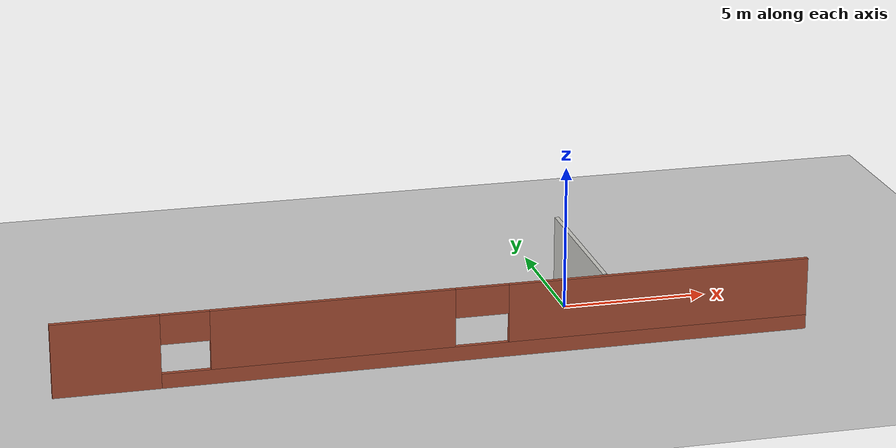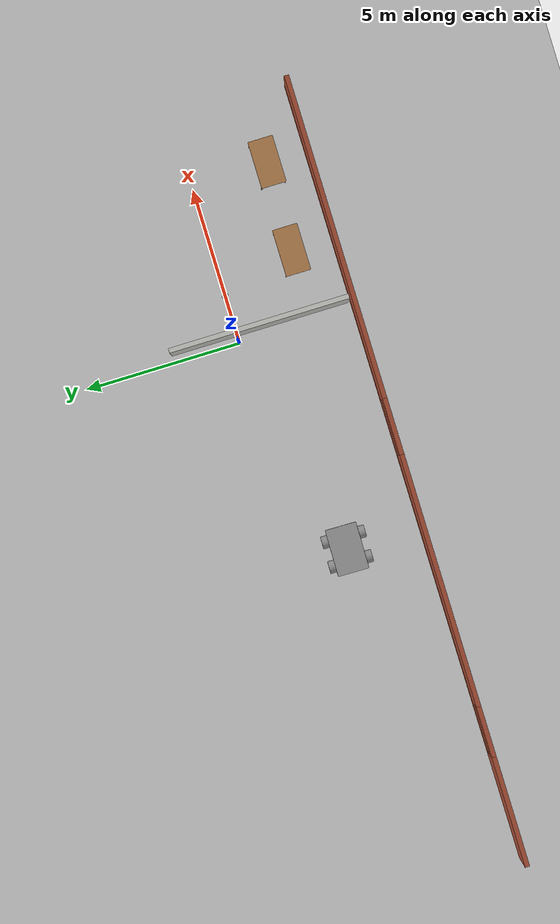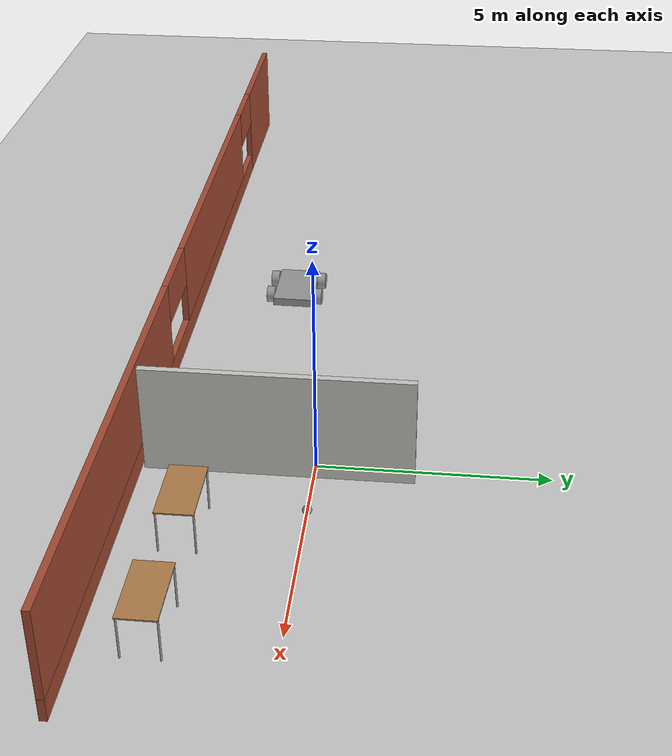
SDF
<sdf version="1.6">
 <world name="default">
  <model name="ground_plane">
   <static>1</static>
   <link name="link">
    <collision name="collision">
     <geometry><plane><normal>0 0 1</normal><size>100 100</size></plane></geometry>
     <surface><friction><ode><mu>100</mu><mu2>50</mu2></ode></friction></surface>
    </collision>
    <visual name="visual">
     <cast_shadows>0</cast_shadows>
     <geometry><plane><normal>0 0 1</normal><size>100 100</size></plane></geometry>
     <material>
      <script><uri>file://media/materials/scripts/gazebo.material</uri><name>Gazebo/Grey</name></script>
     </material>
    </visual>
   </link>
  </model>
  <model name="robot4wheels">
   <link name="link_0">
    <pose>0 0 -0.016 0 -0 0</pose>
    <inertial>
     <mass>1</mass>
     <inertia>
      <ixx>0.166667</ixx>
      <ixy>0</ixy>
      <ixz>0</ixz>
      <iyy>0.166667</iyy>
      <iyz>0</iyz>
      <izz>0.166667</izz>
     </inertia>
    </inertial>
    <visual name="visual">
     <geometry><box><size>1.5 1 0.2</size></box></geometry>
     <material>
      <lighting>1</lighting>
      <script><uri>file://media/materials/scripts/gazebo.material</uri><name>Gazebo/Grey</name></script>
      <shader type="pixel"><normal_map>__default__</normal_map></shader>
      <ambient>0.3 0.3 0.3 1</ambient>
      <diffuse>0.7 0.7 0.7 1</diffuse>
      <specular>0.01 0.01 0.01 1</specular>
      <emissive>0 0 0 1</emissive>
     </material>
    </visual>
    <collision name="collision">
     <geometry><box><size>1.5 1 0.2</size></box></geometry>
     <surface>
      <friction>
       <ode><mu>1</mu><mu2>1</mu2><fdir1>0 0 0</fdir1><slip1>0</slip1><slip2>0</slip2></ode>
       <torsional>
        <coefficient>1</coefficient>
        <patch_radius>0</patch_radius>
        <surface_radius>0</surface_radius>
        <use_patch_radius>1</use_patch_radius>
        <ode><slip>0</slip></ode>
       </torsional>
      </friction>
      <bounce><restitution_coefficient>0</restitution_coefficient><threshold>1e+06</threshold></bounce>
      <contact>
       <collide_without_contact>0</collide_without_contact>
       <collide_without_contact_bitmask>1</collide_without_contact_bitmask>
       <collide_bitmask>1</collide_bitmask>
       <ode>
        <soft_cfm>0</soft_cfm>
        <soft_erp>0.2</soft_erp>
        <kp>1e+13</kp>
        <kd>1</kd>
        <max_vel>0.01</max_vel>
        <min_depth>0</min_depth>
       </ode>
       <bullet>
        <split_impulse>1</split_impulse>
        <split_impulse_penetration_threshold>-0.01</split_impulse_penetration_threshold>
        <soft_cfm>0</soft_cfm>
        <soft_erp>0.2</soft_erp>
        <kp>1e+13</kp>
        <kd>1</kd>
       </bullet>
      </contact>
     </surface>
    </collision>
   </link>
   <link name="link_1">
    <pose>-0.4 -0.600001 0.004 1.5708 -0 0</pose>
    <inertial>
     <mass>1</mass>
     <inertia><ixx>0.145833</ixx><ixy>0</ixy><ixz>0</ixz><iyy>0.145833</iyy><iyz>0</iyz><izz>0.125</izz></inertia>
    </inertial>
    <visual name="visual">
     <geometry><cylinder><radius>0.2</radius><length>0.2</length></cylinder></geometry>
     <material>
      <lighting>1</lighting>
      <script><uri>file://media/materials/scripts/gazebo.material</uri><name>Gazebo/Grey</name></script>
      <shader type="pixel"><normal_map>__default__</normal_map></shader>
      <ambient>0.3 0.3 0.3 1</ambient>
      <diffuse>0.7 0.7 0.7 1</diffuse>
      <specular>0.01 0.01 0.01 1</specular>
      <emissive>0 0 0 1</emissive>
     </material>
    </visual>
    <collision name="collision">
     <geometry><cylinder><radius>0.2</radius><length>0.2</length></cylinder></geometry>
     <surface>
      <friction>
       <ode><mu>1</mu><mu2>1</mu2><fdir1>0 0 0</fdir1><slip1>0</slip1><slip2>0</slip2></ode>
       <torsional>
        <coefficient>1</coefficient>
        <patch_radius>0</patch_radius>
        <surface_radius>0</surface_radius>
        <use_patch_radius>1</use_patch_radius>
        <ode><slip>0</slip></ode>
       </torsional>
      </friction>
      <bounce><restitution_coefficient>0</restitution_coefficient><threshold>1e+06</threshold></bounce>
      <contact>
       <collide_without_contact>0</collide_without_contact>
       <collide_without_contact_bitmask>1</collide_without_contact_bitmask>
       <collide_bitmask>1</collide_bitmask>
       <ode>
        <soft_cfm>0</soft_cfm>
        <soft_erp>0.2</soft_erp>
        <kp>1e+13</kp>
        <kd>1</kd>
        <max_vel>0.01</max_vel>
        <min_depth>0</min_depth>
       </ode>
       <bullet>
        <split_impulse>1</split_impulse>
        <split_impulse_penetration_threshold>-0.01</split_impulse_penetration_threshold>
        <soft_cfm>0</soft_cfm>
        <soft_erp>0.2</soft_erp>
        <kp>1e+13</kp>
        <kd>1</kd>
       </bullet>
      </contact>
     </surface>
    </collision>
   </link>
   <link name="link_1_clone">
    <pose>-0.4 0.600001 0.004 1.5708 -0 0</pose>
    <inertial>
     <mass>1</mass>
     <inertia><ixx>0.145833</ixx><ixy>0</ixy><ixz>0</ixz><iyy>0.145833</iyy><iyz>0</iyz><izz>0.125</izz></inertia>
    </inertial>
    <visual name="visual">
     <geometry><cylinder><radius>0.2</radius><length>0.2</length></cylinder></geometry>
     <material>
      <lighting>1</lighting>
      <script><uri>file://media/materials/scripts/gazebo.material</uri><name>Gazebo/Grey</name></script>
      <shader type="pixel"><normal_map>__default__</normal_map></shader>
      <ambient>0.3 0.3 0.3 1</ambient>
      <diffuse>0.7 0.7 0.7 1</diffuse>
      <specular>0.01 0.01 0.01 1</specular>
      <emissive>0 0 0 1</emissive>
     </material>
    </visual>
    <collision name="collision">
     <geometry><cylinder><radius>0.2</radius><length>0.2</length></cylinder></geometry>
     <surface>
      <friction>
       <ode><mu>1</mu><mu2>1</mu2><fdir1>0 0 0</fdir1><slip1>0</slip1><slip2>0</slip2></ode>
       <torsional>
        <coefficient>1</coefficient>
        <patch_radius>0</patch_radius>
        <surface_radius>0</surface_radius>
        <use_patch_radius>1</use_patch_radius>
        <ode><slip>0</slip></ode>
       </torsional>
      </friction>
      <bounce><restitution_coefficient>0</restitution_coefficient><threshold>1e+06</threshold></bounce>
      <contact>
       <collide_without_contact>0</collide_without_contact>
       <collide_without_contact_bitmask>1</collide_without_contact_bitmask>
       <collide_bitmask>1</collide_bitmask>
       <ode>
        <soft_cfm>0</soft_cfm>
        <soft_erp>0.2</soft_erp>
        <kp>1e+13</kp>
        <kd>1</kd>
        <max_vel>0.01</max_vel>
        <min_depth>0</min_depth>
       </ode>
       <bullet>
        <split_impulse>1</split_impulse>
        <split_impulse_penetration_threshold>-0.01</split_impulse_penetration_threshold>
        <soft_cfm>0</soft_cfm>
        <soft_erp>0.2</soft_erp>
        <kp>1e+13</kp>
        <kd>1</kd>
       </bullet>
      </contact>
     </surface>
    </collision>
   </link>
   <link name="link_1_clone_0">
    <pose>0.4 -0.600001 0.004 1.5708 -0 0</pose>
    <inertial>
     <mass>1</mass>
     <inertia><ixx>0.145833</ixx><ixy>0</ixy><ixz>0</ixz><iyy>0.145833</iyy><iyz>0</iyz><izz>0.125</izz></inertia>
    </inertial>
    <visual name="visual">
     <geometry><cylinder><radius>0.2</radius><length>0.2</length></cylinder></geometry>
     <material>
      <lighting>1</lighting>
      <script><uri>file://media/materials/scripts/gazebo.material</uri><name>Gazebo/Grey</name></script>
      <shader type="pixel"><normal_map>__default__</normal_map></shader>
      <ambient>0.3 0.3 0.3 1</ambient>
      <diffuse>0.7 0.7 0.7 1</diffuse>
      <specular>0.01 0.01 0.01 1</specular>
      <emissive>0 0 0 1</emissive>
     </material>
    </visual>
    <collision name="collision">
     <geometry><cylinder><radius>0.2</radius><length>0.2</length></cylinder></geometry>
     <surface>
      <friction>
       <ode><mu>1</mu><mu2>1</mu2><fdir1>0 0 0</fdir1><slip1>0</slip1><slip2>0</slip2></ode>
       <torsional>
        <coefficient>1</coefficient>
        <patch_radius>0</patch_radius>
        <surface_radius>0</surface_radius>
        <use_patch_radius>1</use_patch_radius>
        <ode><slip>0</slip></ode>
       </torsional>
      </friction>
      <bounce><restitution_coefficient>0</restitution_coefficient><threshold>1e+06</threshold></bounce>
      <contact>
       <collide_without_contact>0</collide_without_contact>
       <collide_without_contact_bitmask>1</collide_without_contact_bitmask>
       <collide_bitmask>1</collide_bitmask>
       <ode>
        <soft_cfm>0</soft_cfm>
        <soft_erp>0.2</soft_erp>
        <kp>1e+13</kp>
        <kd>1</kd>
        <max_vel>0.01</max_vel>
        <min_depth>0</min_depth>
       </ode>
       <bullet>
        <split_impulse>1</split_impulse>
        <split_impulse_penetration_threshold>-0.01</split_impulse_penetration_threshold>
        <soft_cfm>0</soft_cfm>
        <soft_erp>0.2</soft_erp>
        <kp>1e+13</kp>
        <kd>1</kd>
       </bullet>
      </contact>
     </surface>
    </collision>
   </link>
   <link name="link_1_clone_1">
    <pose>0.4 0.600001 0.004 1.5708 -0 0</pose>
    <inertial>
     <mass>1</mass>
     <inertia><ixx>0.145833</ixx><ixy>0</ixy><ixz>0</ixz><iyy>0.145833</iyy><iyz>0</iyz><izz>0.125</izz></inertia>
    </inertial>
    <visual name="visual">
     <geometry><cylinder><radius>0.2</radius><length>0.2</length></cylinder></geometry>
     <material>
      <lighting>1</lighting>
      <script><uri>file://media/materials/scripts/gazebo.material</uri><name>Gazebo/Grey</name></script>
      <shader type="pixel"><normal_map>__default__</normal_map></shader>
      <ambient>0.3 0.3 0.3 1</ambient>
      <diffuse>0.7 0.7 0.7 1</diffuse>
      <specular>0.01 0.01 0.01 1</specular>
      <emissive>0 0 0 1</emissive>
     </material>
    </visual>
    <collision name="collision">
     <geometry><cylinder><radius>0.2</radius><length>0.2</length></cylinder></geometry>
     <surface>
      <friction>
       <ode><mu>1</mu><mu2>1</mu2><fdir1>0 0 0</fdir1><slip1>0</slip1><slip2>0</slip2></ode>
       <torsional>
        <coefficient>1</coefficient>
        <patch_radius>0</patch_radius>
        <surface_radius>0</surface_radius>
        <use_patch_radius>1</use_patch_radius>
        <ode><slip>0</slip></ode>
       </torsional>
      </friction>
      <bounce><restitution_coefficient>0</restitution_coefficient><threshold>1e+06</threshold></bounce>
      <contact>
       <collide_without_contact>0</collide_without_contact>
       <collide_without_contact_bitmask>1</collide_without_contact_bitmask>
       <collide_bitmask>1</collide_bitmask>
       <ode>
        <soft_cfm>0</soft_cfm>
        <soft_erp>0.2</soft_erp>
        <kp>1e+13</kp>
        <kd>1</kd>
        <max_vel>0.01</max_vel>
        <min_depth>0</min_depth>
       </ode>
       <bullet>
        <split_impulse>1</split_impulse>
        <split_impulse_penetration_threshold>-0.01</split_impulse_penetration_threshold>
        <soft_cfm>0</soft_cfm>
        <soft_erp>0.2</soft_erp>
        <kp>1e+13</kp>
        <kd>1</kd>
       </bullet>
      </contact>
     </surface>
    </collision>
   </link>
   <joint name="link_0_JOINT_0" type="revolute">
    <parent>link_0</parent>
    <child>link_1</child>
    <axis>
     <xyz>0 0 1</xyz>
     <use_parent_model_frame>0</use_parent_model_frame>
     <limit>
      <lower>-1.79769e+308</lower>
      <upper>1.79769e+308</upper>
      <effort>-1</effort>
      <velocity>-1</velocity>
     </limit>
     <dynamics>
      <spring_reference>0</spring_reference>
      <spring_stiffness>0</spring_stiffness>
      <damping>0</damping>
     </dynamics>
    </axis>
    <physics>
     <ode><limit><cfm>0</cfm><erp>0.2</erp></limit><suspension><cfm>0</cfm><erp>0.2</erp></suspension></ode>
    </physics>
   </joint>
   <joint name="link_0_JOINT_1" type="revolute">
    <parent>link_0</parent>
    <child>link_1_clone_0</child>
    <axis>
     <xyz>0 0 1</xyz>
     <use_parent_model_frame>0</use_parent_model_frame>
     <limit>
      <lower>-1.79769e+308</lower>
      <upper>1.79769e+308</upper>
      <effort>-1</effort>
      <velocity>-1</velocity>
     </limit>
     <dynamics>
      <spring_reference>0</spring_reference>
      <spring_stiffness>0</spring_stiffness>
      <damping>0</damping>
      <friction>0</friction>
     </dynamics>
    </axis>
    <physics>
     <ode><limit><cfm>0</cfm><erp>0.2</erp></limit><suspension><cfm>0</cfm><erp>0.2</erp></suspension></ode>
    </physics>
   </joint>
   <joint name="link_0_JOINT_3" type="revolute">
    <parent>link_0</parent>
    <child>link_1_clone_1</child>
    <axis>
     <xyz>0 0 1</xyz>
     <use_parent_model_frame>0</use_parent_model_frame>
     <limit>
      <lower>-1.79769e+308</lower>
      <upper>1.79769e+308</upper>
      <effort>-1</effort>
      <velocity>-1</velocity>
     </limit>
     <dynamics>
      <spring_reference>0</spring_reference>
      <spring_stiffness>0</spring_stiffness>
      <damping>0</damping>
     </dynamics>
    </axis>
    <physics>
     <ode><limit><cfm>0</cfm><erp>0.2</erp></limit><suspension><cfm>0</cfm><erp>0.2</erp></suspension></ode>
    </physics>
   </joint>
   <joint name="link_0_JOINT_4" type="revolute">
    <parent>link_0</parent>
    <child>link_1_clone</child>
    <axis>
     <xyz>0 0 1</xyz>
     <use_parent_model_frame>0</use_parent_model_frame>
     <limit>
      <lower>-1.79769e+308</lower>
      <upper>1.79769e+308</upper>
      <effort>-1</effort>
      <velocity>-1</velocity>
     </limit>
     <dynamics>
      <spring_reference>0</spring_reference>
      <spring_stiffness>0</spring_stiffness>
      <damping>0</damping>
     </dynamics>
    </axis>
    <physics>
     <ode><limit><cfm>0</cfm><erp>0.2</erp></limit><suspension><cfm>0</cfm><erp>0.2</erp></suspension></ode>
    </physics>
   </joint>
   <static>0</static>
   <pose>-7.13642 -1.33279 0.196001 1e-06 0 -0.014132</pose>
  </model>
  <model name="table">
   <static>1</static>
   <link name="link">
    <collision name="surface">
     <pose>0 0 1 0 -0 0</pose>
     <geometry><box><size>1.5 0.8 0.03</size></box></geometry>
     <surface><friction><ode><mu>0.6</mu><mu2>0.6</mu2></ode></friction></surface>
    </collision>
    <visual name="visual1">
     <pose>0 0 1 0 -0 0</pose>
     <geometry><box><size>1.5 0.8 0.03</size></box></geometry>
     <material>
      <script><uri>file://media/materials/scripts/gazebo.material</uri><name>Gazebo/Wood</name></script>
     </material>
    </visual>
    <collision name="front_left_leg">
     <pose>0.68 0.38 0.5 0 -0 0</pose>
     <geometry><cylinder><radius>0.02</radius><length>1</length></cylinder></geometry>
    </collision>
    <visual name="front_left_leg">
     <pose>0.68 0.38 0.5 0 -0 0</pose>
     <geometry><cylinder><radius>0.02</radius><length>1</length></cylinder></geometry>
     <material>
      <script><uri>file://media/materials/scripts/gazebo.material</uri><name>Gazebo/Grey</name></script>
     </material>
    </visual>
    <collision name="front_right_leg">
     <pose>0.68 -0.38 0.5 0 -0 0</pose>
     <geometry><cylinder><radius>0.02</radius><length>1</length></cylinder></geometry>
    </collision>
    <visual name="front_right_leg">
     <pose>0.68 -0.38 0.5 0 -0 0</pose>
     <geometry><cylinder><radius>0.02</radius><length>1</length></cylinder></geometry>
     <material>
      <script><uri>file://media/materials/scripts/gazebo.material</uri><name>Gazebo/Grey</name></script>
     </material>
    </visual>
    <collision name="back_right_leg">
     <pose>-0.68 -0.38 0.5 0 -0 0</pose>
     <geometry><cylinder><radius>0.02</radius><length>1</length></cylinder></geometry>
    </collision>
    <visual name="back_right_leg">
     <pose>-0.68 -0.38 0.5 0 -0 0</pose>
     <geometry><cylinder><radius>0.02</radius><length>1</length></cylinder></geometry>
     <material>
      <script><uri>file://media/materials/scripts/gazebo.material</uri><name>Gazebo/Grey</name></script>
     </material>
    </visual>
    <collision name="back_left_leg">
     <pose>-0.68 0.38 0.5 0 -0 0</pose>
     <geometry><cylinder><radius>0.02</radius><length>1</length></cylinder></geometry>
    </collision>
    <visual name="back_left_leg">
     <pose>-0.68 0.38 0.5 0 -0 0</pose>
     <geometry><cylinder><radius>0.02</radius><length>1</length></cylinder></geometry>
     <material>
      <script><uri>file://media/materials/scripts/gazebo.material</uri><name>Gazebo/Grey</name></script>
     </material>
    </visual>
   </link>
   <pose>2.25702 -2.38315 0 0 -0 0</pose>
  </model>
  <model name="table_0">
   <static>1</static>
   <link name="link">
    <collision name="surface">
     <pose>0 0 1 0 -0 0</pose>
     <geometry><box><size>1.5 0.8 0.03</size></box></geometry>
     <surface><friction><ode><mu>0.6</mu><mu2>0.6</mu2></ode></friction></surface>
    </collision>
    <visual name="visual1">
     <pose>0 0 1 0 -0 0</pose>
     <geometry><box><size>1.5 0.8 0.03</size></box></geometry>
     <material>
      <script><uri>file://media/materials/scripts/gazebo.material</uri><name>Gazebo/Wood</name></script>
     </material>
    </visual>
    <collision name="front_left_leg">
     <pose>0.68 0.38 0.5 0 -0 0</pose>
     <geometry><cylinder><radius>0.02</radius><length>1</length></cylinder></geometry>
    </collision>
    <visual name="front_left_leg">
     <pose>0.68 0.38 0.5 0 -0 0</pose>
     <geometry><cylinder><radius>0.02</radius><length>1</length></cylinder></geometry>
     <material>
      <script><uri>file://media/materials/scripts/gazebo.material</uri><name>Gazebo/Grey</name></script>
     </material>
    </visual>
    <collision name="front_right_leg">
     <pose>0.68 -0.38 0.5 0 -0 0</pose>
     <geometry><cylinder><radius>0.02</radius><length>1</length></cylinder></geometry>
    </collision>
    <visual name="front_right_leg">
     <pose>0.68 -0.38 0.5 0 -0 0</pose>
     <geometry><cylinder><radius>0.02</radius><length>1</length></cylinder></geometry>
     <material>
      <script><uri>file://media/materials/scripts/gazebo.material</uri><name>Gazebo/Grey</name></script>
     </material>
    </visual>
    <collision name="back_right_leg">
     <pose>-0.68 -0.38 0.5 0 -0 0</pose>
     <geometry><cylinder><radius>0.02</radius><length>1</length></cylinder></geometry>
    </collision>
    <visual name="back_right_leg">
     <pose>-0.68 -0.38 0.5 0 -0 0</pose>
     <geometry><cylinder><radius>0.02</radius><length>1</length></cylinder></geometry>
     <material>
      <script><uri>file://media/materials/scripts/gazebo.material</uri><name>Gazebo/Grey</name></script>
     </material>
    </visual>
    <collision name="back_left_leg">
     <pose>-0.68 0.38 0.5 0 -0 0</pose>
     <geometry><cylinder><radius>0.02</radius><length>1</length></cylinder></geometry>
    </collision>
    <visual name="back_left_leg">
     <pose>-0.68 0.38 0.5 0 -0 0</pose>
     <geometry><cylinder><radius>0.02</radius><length>1</length></cylinder></geometry>
     <material>
      <script><uri>file://media/materials/scripts/gazebo.material</uri><name>Gazebo/Grey</name></script>
     </material>
    </visual>
   </link>
   <pose>5.08665 -2.44916 0 0 -0 0</pose>
  </model>
  <model name="myhouse">
   <link name="Wall_12">
    <pose>5.62786 -4.42847 0 0 -0 1.5708</pose>
    <visual name="Wall_12_Visual">
     <pose>0 0 1.25 0 -0 0</pose>
     <geometry><box><size>5.75 0.15 2.5</size></box></geometry>
     <material>
      <script><uri>file://media/materials/scripts/gazebo.material</uri><name>Gazebo/CeilingTiled</name></script>
      <ambient>0.333333 1 1 1</ambient>
      <shader type="pixel"/>
      <diffuse>1 1 1 1</diffuse>
      <specular>0 0 0 1</specular>
      <emissive>0 0 0 1</emissive>
     </material>
     <meta><layer>0</layer></meta>
    </visual>
    <collision name="Wall_12_Collision">
     <pose>0 0 1.25 0 -0 0</pose>
     <geometry><box><size>5.75 0.15 2.5</size></box></geometry>
     <surface>
      <friction>
       <ode><mu>1</mu><mu2>1</mu2><fdir1>0 0 0</fdir1><slip1>0</slip1><slip2>0</slip2></ode>
       <torsional>
        <coefficient>1</coefficient>
        <patch_radius>0</patch_radius>
        <surface_radius>0</surface_radius>
        <use_patch_radius>1</use_patch_radius>
        <ode><slip>0</slip></ode>
       </torsional>
      </friction>
      <bounce><restitution_coefficient>0</restitution_coefficient><threshold>1e+06</threshold></bounce>
      <contact>
       <collide_without_contact>0</collide_without_contact>
       <collide_without_contact_bitmask>1</collide_without_contact_bitmask>
       <collide_bitmask>1</collide_bitmask>
       <ode>
        <soft_cfm>0</soft_cfm>
        <soft_erp>0.2</soft_erp>
        <kp>1e+13</kp>
        <kd>1</kd>
        <max_vel>0.01</max_vel>
        <min_depth>0</min_depth>
       </ode>
       <bullet>
        <split_impulse>1</split_impulse>
        <split_impulse_penetration_threshold>-0.01</split_impulse_penetration_threshold>
        <soft_cfm>0</soft_cfm>
        <soft_erp>0.2</soft_erp>
        <kp>1e+13</kp>
        <kd>1</kd>
       </bullet>
      </contact>
     </surface>
    </collision>
   </link>
   <link name="Wall_2">
    <pose>0 -7.43705 0 0 -0 0</pose>
    <visual name="Wall_2_Visual_0">
     <pose>-10.8742 0 1.25 0 -0 0</pose>
     <geometry><box><size>3.50151 0.15 2.5</size></box></geometry>
     <material>
      <script><uri>file://media/materials/scripts/gazebo.material</uri><name>Gazebo/Bricks</name></script>
      <ambient>1 1 1 1</ambient>
      <shader type="pixel"/>
      <diffuse>1 1 1 1</diffuse>
      <specular>0.2 0.2 0.2 1</specular>
      <emissive>0 0 0 1</emissive>
     </material>
     <meta><layer>0</layer></meta>
    </visual>
    <visual name="Wall_2_Visual_1">
     <pose>1.75075 0 0.25 0 -0 0</pose>
     <geometry><box><size>21.7485 0.15 0.5</size></box></geometry>
     <material>
      <script><uri>file://media/materials/scripts/gazebo.material</uri><name>Gazebo/Bricks</name></script>
      <ambient>1 1 1 1</ambient>
      <shader type="pixel"/>
      <diffuse>1 1 1 1</diffuse>
      <specular>0.2 0.2 0.2 1</specular>
      <emissive>0 0 0 1</emissive>
     </material>
     <meta><layer>0</layer></meta>
    </visual>
    <visual name="Wall_2_Visual_2">
     <pose>-3.49871 0 1.5 0 -0 0</pose>
     <geometry><box><size>8.04956 0.15 2</size></box></geometry>
     <material>
      <script><uri>file://media/materials/scripts/gazebo.material</uri><name>Gazebo/Bricks</name></script>
      <ambient>1 1 1 1</ambient>
      <shader type="pixel"/>
      <diffuse>1 1 1 1</diffuse>
      <specular>0.2 0.2 0.2 1</specular>
      <emissive>0 0 0 1</emissive>
     </material>
     <meta><layer>0</layer></meta>
    </visual>
    <visual name="Wall_2_Visual_3">
     <pose>7.47553 0 1.5 0 -0 0</pose>
     <geometry><box><size>10.2989 0.15 2</size></box></geometry>
     <material>
      <script><uri>file://media/materials/scripts/gazebo.material</uri><name>Gazebo/Bricks</name></script>
      <ambient>1 1 1 1</ambient>
      <shader type="pixel"/>
      <diffuse>1 1 1 1</diffuse>
      <specular>0.2 0.2 0.2 1</specular>
      <emissive>0 0 0 1</emissive>
     </material>
     <meta><layer>0</layer></meta>
    </visual>
    <visual name="Wall_2_Visual_4">
     <pose>-8.32349 0 2 0 -0 0</pose>
     <geometry><box><size>1.6 0.15 1</size></box></geometry>
     <material>
      <script><uri>file://media/materials/scripts/gazebo.material</uri><name>Gazebo/Bricks</name></script>
      <ambient>1 1 1 1</ambient>
      <shader type="pixel"/>
      <diffuse>1 1 1 1</diffuse>
      <specular>0.2 0.2 0.2 1</specular>
      <emissive>0 0 0 1</emissive>
     </material>
     <meta><layer>0</layer></meta>
    </visual>
    <visual name="Wall_2_Visual_5">
     <pose>1.42607 0 2 0 -0 0</pose>
     <geometry><box><size>1.8 0.15 1</size></box></geometry>
     <material>
      <script><uri>file://media/materials/scripts/gazebo.material</uri><name>Gazebo/Bricks</name></script>
      <ambient>1 1 1 1</ambient>
      <shader type="pixel"/>
      <diffuse>1 1 1 1</diffuse>
      <specular>0.2 0.2 0.2 1</specular>
      <emissive>0 0 0 1</emissive>
     </material>
     <meta><layer>0</layer></meta>
    </visual>
    <collision name="Wall_2_Collision_0">
     <pose>-10.8742 0 1.25 0 -0 0</pose>
     <geometry><box><size>3.50151 0.15 2.5</size></box></geometry>
     <surface>
      <friction>
       <ode><mu>1</mu><mu2>1</mu2><fdir1>0 0 0</fdir1><slip1>0</slip1><slip2>0</slip2></ode>
       <torsional>
        <coefficient>1</coefficient>
        <patch_radius>0</patch_radius>
        <surface_radius>0</surface_radius>
        <use_patch_radius>1</use_patch_radius>
        <ode><slip>0</slip></ode>
       </torsional>
      </friction>
      <bounce><restitution_coefficient>0</restitution_coefficient><threshold>1e+06</threshold></bounce>
      <contact>
       <collide_without_contact>0</collide_without_contact>
       <collide_without_contact_bitmask>1</collide_without_contact_bitmask>
       <collide_bitmask>1</collide_bitmask>
       <ode>
        <soft_cfm>0</soft_cfm>
        <soft_erp>0.2</soft_erp>
        <kp>1e+13</kp>
        <kd>1</kd>
        <max_vel>0.01</max_vel>
        <min_depth>0</min_depth>
       </ode>
       <bullet>
        <split_impulse>1</split_impulse>
        <split_impulse_penetration_threshold>-0.01</split_impulse_penetration_threshold>
        <soft_cfm>0</soft_cfm>
        <soft_erp>0.2</soft_erp>
        <kp>1e+13</kp>
        <kd>1</kd>
       </bullet>
      </contact>
     </surface>
    </collision>
    <collision name="Wall_2_Collision_1">
     <pose>1.75075 0 0.25 0 -0 0</pose>
     <geometry><box><size>21.7485 0.15 0.5</size></box></geometry>
     <surface>
      <friction>
       <ode><mu>1</mu><mu2>1</mu2><fdir1>0 0 0</fdir1><slip1>0</slip1><slip2>0</slip2></ode>
       <torsional>
        <coefficient>1</coefficient>
        <patch_radius>0</patch_radius>
        <surface_radius>0</surface_radius>
        <use_patch_radius>1</use_patch_radius>
        <ode><slip>0</slip></ode>
       </torsional>
      </friction>
      <bounce><restitution_coefficient>0</restitution_coefficient><threshold>1e+06</threshold></bounce>
      <contact>
       <collide_without_contact>0</collide_without_contact>
       <collide_without_contact_bitmask>1</collide_without_contact_bitmask>
       <collide_bitmask>1</collide_bitmask>
       <ode>
        <soft_cfm>0</soft_cfm>
        <soft_erp>0.2</soft_erp>
        <kp>1e+13</kp>
        <kd>1</kd>
        <max_vel>0.01</max_vel>
        <min_depth>0</min_depth>
       </ode>
       <bullet>
        <split_impulse>1</split_impulse>
        <split_impulse_penetration_threshold>-0.01</split_impulse_penetration_threshold>
        <soft_cfm>0</soft_cfm>
        <soft_erp>0.2</soft_erp>
        <kp>1e+13</kp>
        <kd>1</kd>
       </bullet>
      </contact>
     </surface>
    </collision>
    <collision name="Wall_2_Collision_2">
     <pose>-3.49871 0 1.5 0 -0 0</pose>
     <geometry><box><size>8.04956 0.15 2</size></box></geometry>
     <surface>
      <friction>
       <ode><mu>1</mu><mu2>1</mu2><fdir1>0 0 0</fdir1><slip1>0</slip1><slip2>0</slip2></ode>
       <torsional>
        <coefficient>1</coefficient>
        <patch_radius>0</patch_radius>
        <surface_radius>0</surface_radius>
        <use_patch_radius>1</use_patch_radius>
        <ode><slip>0</slip></ode>
       </torsional>
      </friction>
      <bounce><restitution_coefficient>0</restitution_coefficient><threshold>1e+06</threshold></bounce>
      <contact>
       <collide_without_contact>0</collide_without_contact>
       <collide_without_contact_bitmask>1</collide_without_contact_bitmask>
       <collide_bitmask>1</collide_bitmask>
       <ode>
        <soft_cfm>0</soft_cfm>
        <soft_erp>0.2</soft_erp>
        <kp>1e+13</kp>
        <kd>1</kd>
        <max_vel>0.01</max_vel>
        <min_depth>0</min_depth>
       </ode>
       <bullet>
        <split_impulse>1</split_impulse>
        <split_impulse_penetration_threshold>-0.01</split_impulse_penetration_threshold>
        <soft_cfm>0</soft_cfm>
        <soft_erp>0.2</soft_erp>
        <kp>1e+13</kp>
        <kd>1</kd>
       </bullet>
      </contact>
     </surface>
    </collision>
    <collision name="Wall_2_Collision_3">
     <pose>7.47553 0 1.5 0 -0 0</pose>
     <geometry><box><size>10.2989 0.15 2</size></box></geometry>
     <surface>
      <friction>
       <ode><mu>1</mu><mu2>1</mu2><fdir1>0 0 0</fdir1><slip1>0</slip1><slip2>0</slip2></ode>
       <torsional>
        <coefficient>1</coefficient>
        <patch_radius>0</patch_radius>
        <surface_radius>0</surface_radius>
        <use_patch_radius>1</use_patch_radius>
        <ode><slip>0</slip></ode>
       </torsional>
      </friction>
      <bounce><restitution_coefficient>0</restitution_coefficient><threshold>1e+06</threshold></bounce>
      <contact>
       <collide_without_contact>0</collide_without_contact>
       <collide_without_contact_bitmask>1</collide_without_contact_bitmask>
       <collide_bitmask>1</collide_bitmask>
       <ode>
        <soft_cfm>0</soft_cfm>
        <soft_erp>0.2</soft_erp>
        <kp>1e+13</kp>
        <kd>1</kd>
        <max_vel>0.01</max_vel>
        <min_depth>0</min_depth>
       </ode>
       <bullet>
        <split_impulse>1</split_impulse>
        <split_impulse_penetration_threshold>-0.01</split_impulse_penetration_threshold>
        <soft_cfm>0</soft_cfm>
        <soft_erp>0.2</soft_erp>
        <kp>1e+13</kp>
        <kd>1</kd>
       </bullet>
      </contact>
     </surface>
    </collision>
    <collision name="Wall_2_Collision_5">
     <pose>1.42607 0 2 0 -0 0</pose>
     <geometry><box><size>1.8 0.15 1</size></box></geometry>
     <surface>
      <friction>
       <ode><mu>1</mu><mu2>1</mu2><fdir1>0 0 0</fdir1><slip1>0</slip1><slip2>0</slip2></ode>
       <torsional>
        <coefficient>1</coefficient>
        <patch_radius>0</patch_radius>
        <surface_radius>0</surface_radius>
        <use_patch_radius>1</use_patch_radius>
        <ode><slip>0</slip></ode>
       </torsional>
      </friction>
      <bounce><restitution_coefficient>0</restitution_coefficient><threshold>1e+06</threshold></bounce>
      <contact>
       <collide_without_contact>0</collide_without_contact>
       <collide_without_contact_bitmask>1</collide_without_contact_bitmask>
       <collide_bitmask>1</collide_bitmask>
       <ode>
        <soft_cfm>0</soft_cfm>
        <soft_erp>0.2</soft_erp>
        <kp>1e+13</kp>
        <kd>1</kd>
        <max_vel>0.01</max_vel>
        <min_depth>0</min_depth>
       </ode>
       <bullet>
        <split_impulse>1</split_impulse>
        <split_impulse_penetration_threshold>-0.01</split_impulse_penetration_threshold>
        <soft_cfm>0</soft_cfm>
        <soft_erp>0.2</soft_erp>
        <kp>1e+13</kp>
        <kd>1</kd>
       </bullet>
      </contact>
     </surface>
    </collision>
    <collision name="Wall_2_Collision_4">
     <pose>-8.32349 0 2 0 -0 0</pose>
     <geometry><box><size>1.6 0.15 1</size></box></geometry>
     <surface>
      <friction>
       <ode><mu>1</mu><mu2>1</mu2><fdir1>0 0 0</fdir1><slip1>0</slip1><slip2>0</slip2></ode>
       <torsional>
        <coefficient>1</coefficient>
        <patch_radius>0</patch_radius>
        <surface_radius>0</surface_radius>
        <use_patch_radius>1</use_patch_radius>
        <ode><slip>0</slip></ode>
       </torsional>
      </friction>
      <bounce><restitution_coefficient>0</restitution_coefficient><threshold>1e+06</threshold></bounce>
      <contact>
       <collide_without_contact>0</collide_without_contact>
       <collide_without_contact_bitmask>1</collide_without_contact_bitmask>
       <collide_bitmask>1</collide_bitmask>
       <ode>
        <soft_cfm>0</soft_cfm>
        <soft_erp>0.2</soft_erp>
        <kp>1e+13</kp>
        <kd>1</kd>
        <max_vel>0.01</max_vel>
        <min_depth>0</min_depth>
       </ode>
       <bullet>
        <split_impulse>1</split_impulse>
        <split_impulse_penetration_threshold>-0.01</split_impulse_penetration_threshold>
        <soft_cfm>0</soft_cfm>
        <soft_erp>0.2</soft_erp>
        <kp>1e+13</kp>
        <kd>1</kd>
       </bullet>
      </contact>
     </surface>
    </collision>
   </link>
   <static>1</static>
   <pose>-5.324 3.68376 0 0 -0 0</pose>
  </model>
  <model name="my_ball">
   <link name="link_0">
    <inertial>
     <mass>1</mass>
     <inertia><ixx>0.1</ixx><ixy>0</ixy><ixz>0</ixz><iyy>0.1</iyy><iyz>0</iyz><izz>0.1</izz></inertia>
    </inertial>
    <visual name="visual">
     <geometry><sphere><radius>0.1</radius></sphere></geometry>
     <material>
      <lighting>1</lighting>
      <script><uri>file://media/materials/scripts/gazebo.material</uri><name>Gazebo/Grey</name></script>
      <shader type="pixel"><normal_map>__default__</normal_map></shader>
      <ambient>1 1 1 1</ambient>
      <diffuse>1 1 1 1</diffuse>
      <specular>1 1 1 1</specular>
      <emissive>1 1 1 1</emissive>
     </material>
    </visual>
    <collision name="collision">
     <geometry><sphere><radius>0.1</radius></sphere></geometry>
     <surface>
      <friction>
       <ode><mu>1</mu><mu2>1</mu2><fdir1>0 0 0</fdir1><slip1>0</slip1><slip2>0</slip2></ode>
       <torsional>
        <coefficient>1</coefficient>
        <patch_radius>0</patch_radius>
        <surface_radius>0</surface_radius>
        <use_patch_radius>1</use_patch_radius>
        <ode><slip>0</slip></ode>
       </torsional>
      </friction>
      <bounce><restitution_coefficient>0</restitution_coefficient><threshold>1e+06</threshold></bounce>
      <contact>
       <collide_without_contact>0</collide_without_contact>
       <collide_without_contact_bitmask>1</collide_without_contact_bitmask>
       <collide_bitmask>1</collide_bitmask>
       <ode>
        <soft_cfm>0</soft_cfm>
        <soft_erp>0.2</soft_erp>
        <kp>1e+13</kp>
        <kd>1</kd>
        <max_vel>0.01</max_vel>
        <min_depth>0</min_depth>
       </ode>
       <bullet>
        <split_impulse>1</split_impulse>
        <split_impulse_penetration_threshold>-0.01</split_impulse_penetration_threshold>
        <soft_cfm>0</soft_cfm>
        <soft_erp>0.2</soft_erp>
        <kp>1e+13</kp>
        <kd>1</kd>
       </bullet>
      </contact>
     </surface>
    </collision>
   </link>
   <static>0</static>
   <pose>1.55735 0.006812 0.1 0 -0 0</pose>
  </model>
 </world>
</sdf>
